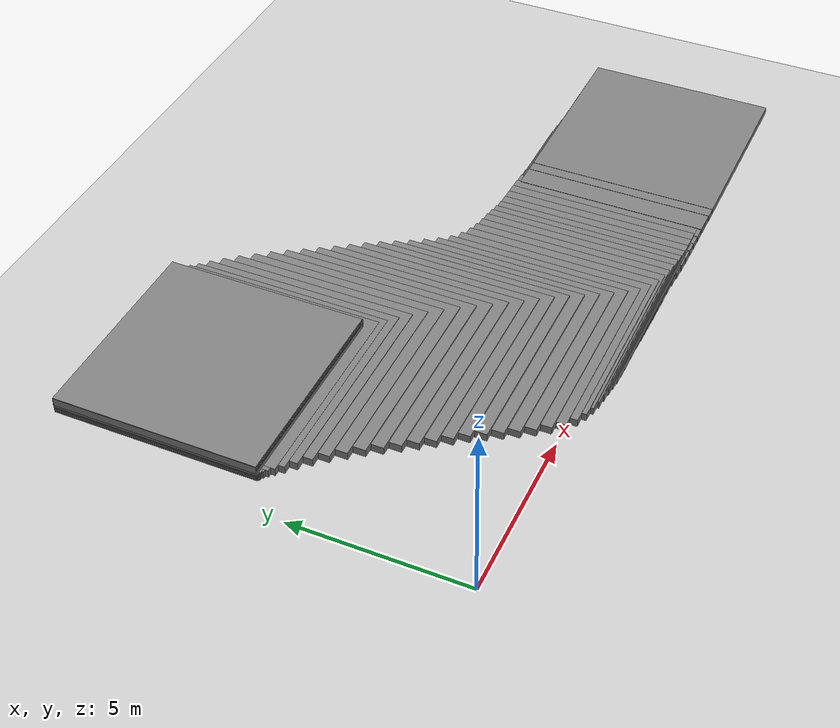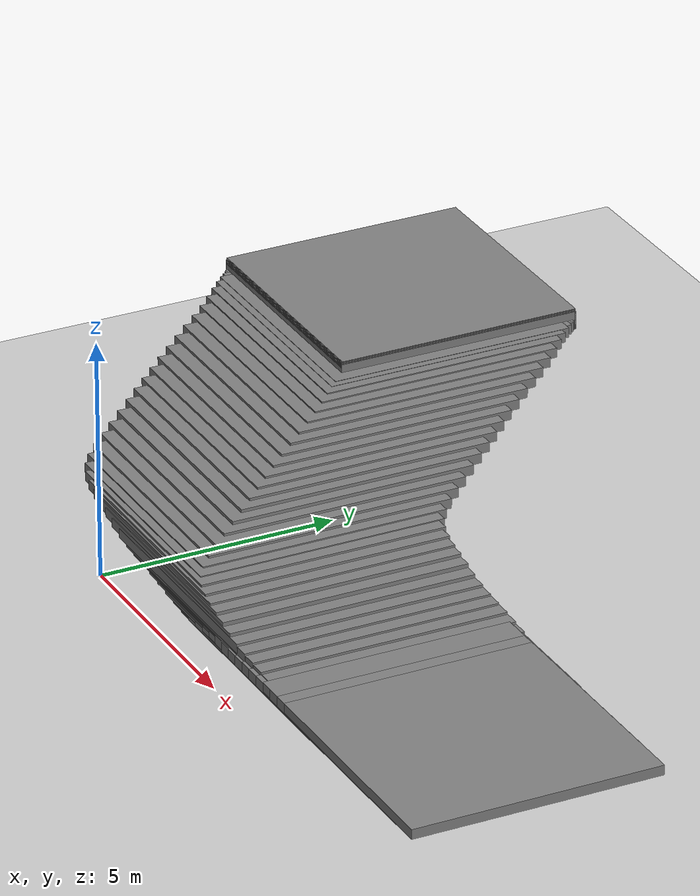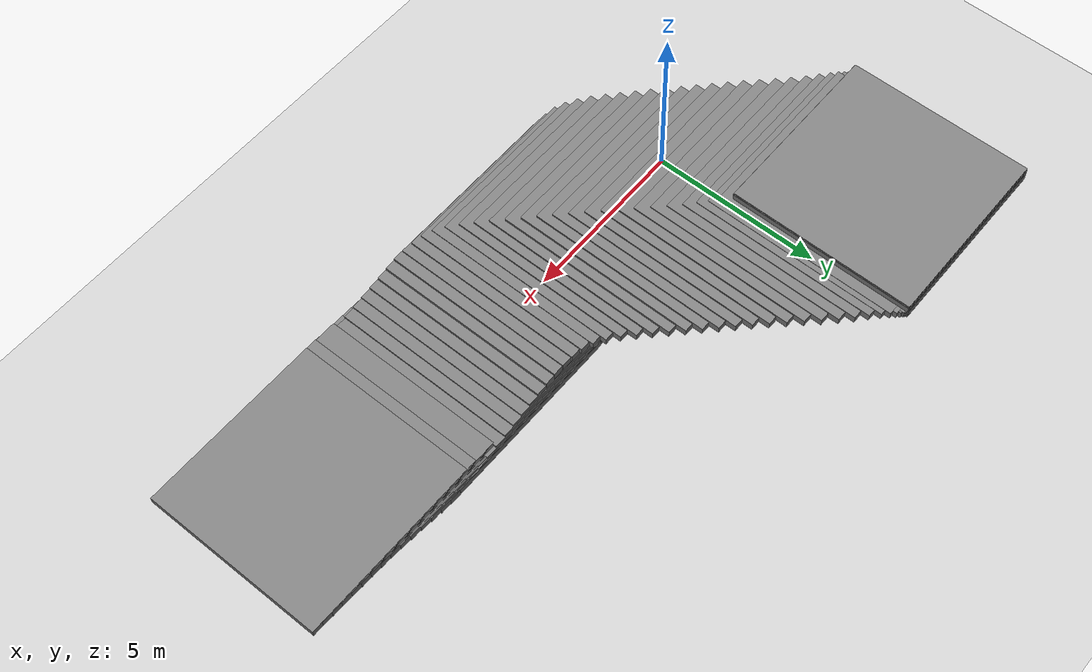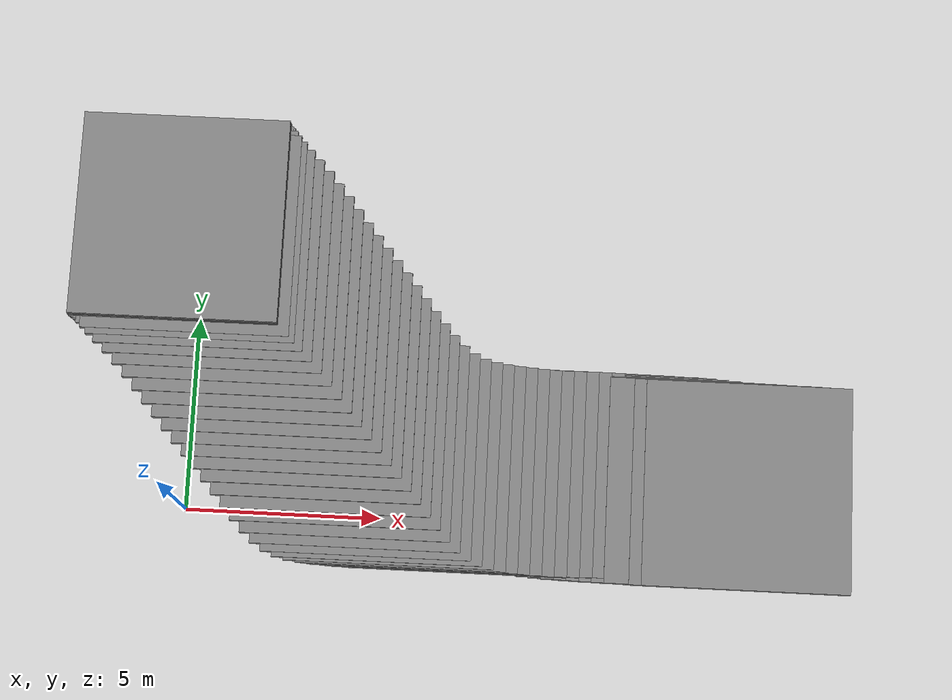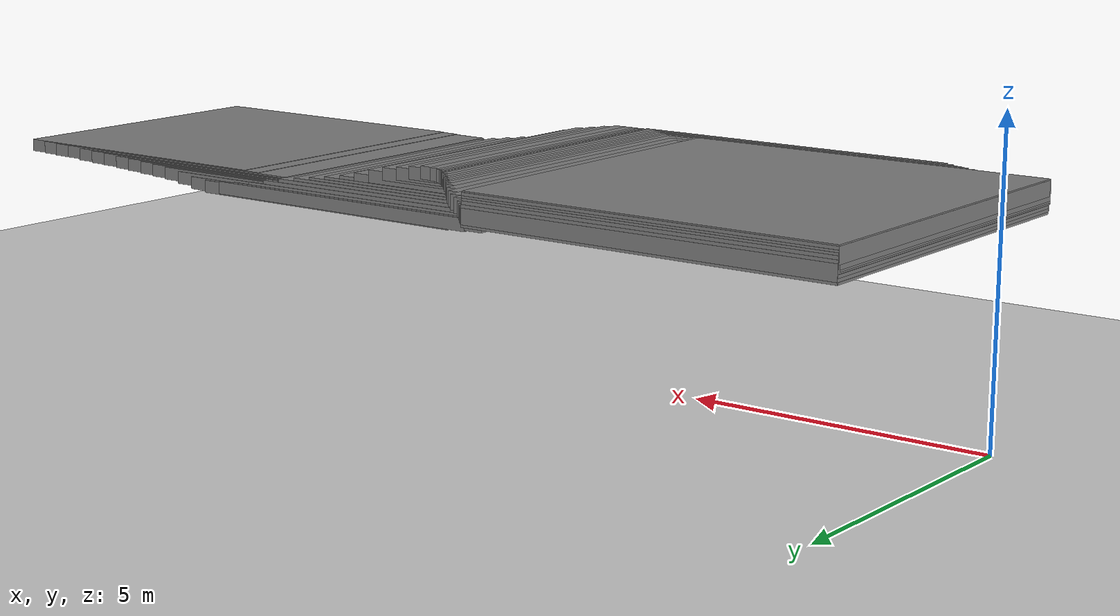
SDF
<sdf version="1.6">
 <world name="default">
  <include><uri>model://sun</uri></include>
  <include><uri>model://ground_plane</uri></include>
  <model name="road_segment_727">
   <static>true</static>
   <link name="link">
    <visual name="visual">
     <geometry><box><size>5.0 5.0 0.2</size></box></geometry>
     <material><ambient>0.5 0.5 0.5 1</ambient><diffuse>0.5 0.5 0.5 1</diffuse></material>
     <pose>13.945016313589571 0.8047315518521492 3.258723942937032 0 0 0</pose>
    </visual>
    <collision name="collision">
     <geometry><box><size>5.0 5.0 0.2</size></box></geometry>
     <pose>13.945016313589571 0.8047315518521492 3.258723942937032 0 0 0</pose>
    </collision>
   </link>
  </model>
  <model name="road_segment_728">
   <static>true</static>
   <link name="link">
    <visual name="visual">
     <geometry><box><size>5.0 5.0 0.2</size></box></geometry>
     <material><ambient>0.5 0.5 0.5 1</ambient><diffuse>0.5 0.5 0.5 1</diffuse></material>
     <pose>13.649188915963883 0.8075917300011508 3.250754920771823 0 0 0</pose>
    </visual>
    <collision name="collision">
     <geometry><box><size>5.0 5.0 0.2</size></box></geometry>
     <pose>13.649188915963883 0.8075917300011508 3.250754920771823 0 0 0</pose>
    </collision>
   </link>
  </model>
  <model name="road_segment_729">
   <static>true</static>
   <link name="link">
    <visual name="visual">
     <geometry><box><size>5.0 5.0 0.2</size></box></geometry>
     <material><ambient>0.5 0.5 0.5 1</ambient><diffuse>0.5 0.5 0.5 1</diffuse></material>
     <pose>13.353591287177087 0.8155593691307714 3.2429150722826083 0 0 0</pose>
    </visual>
    <collision name="collision">
     <geometry><box><size>5.0 5.0 0.2</size></box></geometry>
     <pose>13.353591287177087 0.8155593691307714 3.2429150722826083 0 0 0</pose>
    </collision>
   </link>
  </model>
  <model name="road_segment_730">
   <static>true</static>
   <link name="link">
    <visual name="visual">
     <geometry><box><size>5.0 5.0 0.2</size></box></geometry>
     <material><ambient>0.5 0.5 0.5 1</ambient><diffuse>0.5 0.5 0.5 1</diffuse></material>
     <pose>13.055925738709645 0.8202582332319247 3.2429746909022983 0 0 0</pose>
    </visual>
    <collision name="collision">
     <geometry><box><size>5.0 5.0 0.2</size></box></geometry>
     <pose>13.055925738709645 0.8202582332319247 3.2429746909022983 0 0 0</pose>
    </collision>
   </link>
  </model>
  <model name="road_segment_731">
   <static>true</static>
   <link name="link">
    <visual name="visual">
     <geometry><box><size>5.0 5.0 0.2</size></box></geometry>
     <material><ambient>0.5 0.5 0.5 1</ambient><diffuse>0.5 0.5 0.5 1</diffuse></material>
     <pose>12.757915536983862 0.8235270082567627 3.2236185123763286 0 0 0</pose>
    </visual>
    <collision name="collision">
     <geometry><box><size>5.0 5.0 0.2</size></box></geometry>
     <pose>12.757915536983862 0.8235270082567627 3.2236185123763286 0 0 0</pose>
    </collision>
   </link>
  </model>
  <model name="road_segment_732">
   <static>true</static>
   <link name="link">
    <visual name="visual">
     <geometry><box><size>5.0 5.0 0.2</size></box></geometry>
     <material><ambient>0.5 0.5 0.5 1</ambient><diffuse>0.5 0.5 0.5 1</diffuse></material>
     <pose>12.458182068852095 0.8306774536274518 3.212022690846654 0 0 0</pose>
    </visual>
    <collision name="collision">
     <geometry><box><size>5.0 5.0 0.2</size></box></geometry>
     <pose>12.458182068852095 0.8306774536274518 3.212022690846654 0 0 0</pose>
    </collision>
   </link>
  </model>
  <model name="road_segment_733">
   <static>true</static>
   <link name="link">
    <visual name="visual">
     <geometry><box><size>5.0 5.0 0.2</size></box></geometry>
     <material><ambient>0.5 0.5 0.5 1</ambient><diffuse>0.5 0.5 0.5 1</diffuse></material>
     <pose>12.156955103169565 0.8372150036807571 3.205872036581985 0 0 0</pose>
    </visual>
    <collision name="collision">
     <geometry><box><size>5.0 5.0 0.2</size></box></geometry>
     <pose>12.156955103169565 0.8372150036807571 3.205872036581985 0 0 0</pose>
    </collision>
   </link>
  </model>
  <model name="road_segment_734">
   <static>true</static>
   <link name="link">
    <visual name="visual">
     <geometry><box><size>5.0 5.0 0.2</size></box></geometry>
     <material><ambient>0.5 0.5 0.5 1</ambient><diffuse>0.5 0.5 0.5 1</diffuse></material>
     <pose>11.855728137503363 0.8431396584166783 3.189457043294048 0 0 0</pose>
    </visual>
    <collision name="collision">
     <geometry><box><size>5.0 5.0 0.2</size></box></geometry>
     <pose>11.855728137503363 0.8431396584166783 3.189457043294048 0 0 0</pose>
    </collision>
   </link>
  </model>
  <model name="road_segment_735">
   <static>true</static>
   <link name="link">
    <visual name="visual">
     <geometry><box><size>5.0 5.0 0.2</size></box></geometry>
     <material><ambient>0.5 0.5 0.5 1</ambient><diffuse>0.5 0.5 0.5 1</diffuse></material>
     <pose>11.55335232757739 0.8529459834984507 3.179570288862149 0 0 0</pose>
    </visual>
    <collision name="collision">
     <geometry><box><size>5.0 5.0 0.2</size></box></geometry>
     <pose>11.55335232757739 0.8529459834984507 3.179570288862149 0 0 0</pose>
    </collision>
   </link>
  </model>
  <model name="road_segment_736">
   <static>true</static>
   <link name="link">
    <visual name="visual">
     <geometry><box><size>5.0 5.0 0.2</size></box></geometry>
     <material><ambient>0.5 0.5 0.5 1</ambient><diffuse>0.5 0.5 0.5 1</diffuse></material>
     <pose>11.24844906026033 0.8696984555093648 3.1668615864315974 0 0 0</pose>
    </visual>
    <collision name="collision">
     <geometry><box><size>5.0 5.0 0.2</size></box></geometry>
     <pose>11.24844906026033 0.8696984555093648 3.1668615864315974 0 0 0</pose>
    </collision>
   </link>
  </model>
  <model name="road_segment_737">
   <static>true</static>
   <link name="link">
    <visual name="visual">
     <geometry><box><size>5.0 5.0 0.2</size></box></geometry>
     <material><ambient>0.5 0.5 0.5 1</ambient><diffuse>0.5 0.5 0.5 1</diffuse></material>
     <pose>10.938720647032639 0.8950314619636544 3.156597247408329 0 0 0</pose>
    </visual>
    <collision name="collision">
     <geometry><box><size>5.0 5.0 0.2</size></box></geometry>
     <pose>10.938720647032639 0.8950314619636544 3.156597247408329 0 0 0</pose>
    </collision>
   </link>
  </model>
  <model name="road_segment_738">
   <static>true</static>
   <link name="link">
    <visual name="visual">
     <geometry><box><size>5.0 5.0 0.2</size></box></geometry>
     <material><ambient>0.5 0.5 0.5 1</ambient><diffuse>0.5 0.5 0.5 1</diffuse></material>
     <pose>10.626924314140627 0.9187300809037102 3.144395303245141 0 0 0</pose>
    </visual>
    <collision name="collision">
     <geometry><box><size>5.0 5.0 0.2</size></box></geometry>
     <pose>10.626924314140627 0.9187300809037102 3.144395303245141 0 0 0</pose>
    </collision>
   </link>
  </model>
  <model name="road_segment_739">
   <static>true</static>
   <link name="link">
    <visual name="visual">
     <geometry><box><size>5.0 5.0 0.2</size></box></geometry>
     <material><ambient>0.5 0.5 0.5 1</ambient><diffuse>0.5 0.5 0.5 1</diffuse></material>
     <pose>10.31489821240972 0.9326223747656228 3.1089122880930686 0 0 0</pose>
    </visual>
    <collision name="collision">
     <geometry><box><size>5.0 5.0 0.2</size></box></geometry>
     <pose>10.31489821240972 0.9326223747656228 3.1089122880930686 0 0 0</pose>
    </collision>
   </link>
  </model>
  <model name="road_segment_740">
   <static>true</static>
   <link name="link">
    <visual name="visual">
     <geometry><box><size>5.0 5.0 0.2</size></box></geometry>
     <material><ambient>0.5 0.5 0.5 1</ambient><diffuse>0.5 0.5 0.5 1</diffuse></material>
     <pose>10.001953035257937 0.9434501920442449 3.0593095965111186 0 0 0</pose>
    </visual>
    <collision name="collision">
     <geometry><box><size>5.0 5.0 0.2</size></box></geometry>
     <pose>10.001953035257937 0.9434501920442449 3.0593095965111186 0 0 0</pose>
    </collision>
   </link>
  </model>
  <model name="road_segment_741">
   <static>true</static>
   <link name="link">
    <visual name="visual">
     <geometry><box><size>5.0 5.0 0.2</size></box></geometry>
     <material><ambient>0.5 0.5 0.5 1</ambient><diffuse>0.5 0.5 0.5 1</diffuse></material>
     <pose>9.68728459170017 0.9528479202465514 3.037032105620346 0 0 0</pose>
    </visual>
    <collision name="collision">
     <geometry><box><size>5.0 5.0 0.2</size></box></geometry>
     <pose>9.68728459170017 0.9528479202465514 3.037032105620346 0 0 0</pose>
    </collision>
   </link>
  </model>
  <model name="road_segment_742">
   <static>true</static>
   <link name="link">
    <visual name="visual">
     <geometry><box><size>5.0 5.0 0.2</size></box></geometry>
     <material><ambient>0.5 0.5 0.5 1</ambient><diffuse>0.5 0.5 0.5 1</diffuse></material>
     <pose>9.369284499798864 0.9559123968334713 3.051698286064048 0 0 0</pose>
    </visual>
    <collision name="collision">
     <geometry><box><size>5.0 5.0 0.2</size></box></geometry>
     <pose>9.369284499798864 0.9559123968334713 3.051698286064048 0 0 0</pose>
    </collision>
   </link>
  </model>
  <model name="road_segment_743">
   <static>true</static>
   <link name="link">
    <visual name="visual">
     <geometry><box><size>5.0 5.0 0.2</size></box></geometry>
     <material><ambient>0.5 0.5 0.5 1</ambient><diffuse>0.5 0.5 0.5 1</diffuse></material>
     <pose>9.049561141507901 0.9532565171260171 3.0723163920401193 0 0 0</pose>
    </visual>
    <collision name="collision">
     <geometry><box><size>5.0 5.0 0.2</size></box></geometry>
     <pose>9.049561141507901 0.9532565171260171 3.0723163920401193 0 0 0</pose>
    </collision>
   </link>
  </model>
  <model name="road_segment_744">
   <static>true</static>
   <link name="link">
    <visual name="visual">
     <geometry><box><size>5.0 5.0 0.2</size></box></geometry>
     <material><ambient>0.5 0.5 0.5 1</ambient><diffuse>0.5 0.5 0.5 1</diffuse></material>
     <pose>8.729952667636386 0.9475361608280142 3.115043069484508 0 0 0</pose>
    </visual>
    <collision name="collision">
     <geometry><box><size>5.0 5.0 0.2</size></box></geometry>
     <pose>8.729952667636386 0.9475361608280142 3.115043069484508 0 0 0</pose>
    </collision>
   </link>
  </model>
  <model name="road_segment_745">
   <static>true</static>
   <link name="link">
    <visual name="visual">
     <geometry><box><size>5.0 5.0 0.2</size></box></geometry>
     <material><ambient>0.5 0.5 0.5 1</ambient><diffuse>0.5 0.5 0.5 1</diffuse></material>
     <pose>8.410459078184317 0.9397728201399411 3.176122345356753 0 0 0</pose>
    </visual>
    <collision name="collision">
     <geometry><box><size>5.0 5.0 0.2</size></box></geometry>
     <pose>8.410459078184317 0.9397728201399411 3.176122345356753 0 0 0</pose>
    </collision>
   </link>
  </model>
  <model name="road_segment_746">
   <static>true</static>
   <link name="link">
    <visual name="visual">
     <geometry><box><size>5.0 5.0 0.2</size></box></geometry>
     <material><ambient>0.5 0.5 0.5 1</ambient><diffuse>0.5 0.5 0.5 1</diffuse></material>
     <pose>8.092458986266685 0.9295578981823321 3.231269568569859 0 0 0</pose>
    </visual>
    <collision name="collision">
     <geometry><box><size>5.0 5.0 0.2</size></box></geometry>
     <pose>8.092458986266685 0.9295578981823321 3.231269568569859 0 0 0</pose>
    </collision>
   </link>
  </model>
  <model name="road_segment_747">
   <static>true</static>
   <link name="link">
    <visual name="visual">
     <geometry><box><size>5.0 5.0 0.2</size></box></geometry>
     <material><ambient>0.5 0.5 0.5 1</ambient><diffuse>0.5 0.5 0.5 1</diffuse></material>
     <pose>7.778250080419356 0.918525782465792 3.2783583416882207 0 0 0</pose>
    </visual>
    <collision name="collision">
     <geometry><box><size>5.0 5.0 0.2</size></box></geometry>
     <pose>7.778250080419356 0.918525782465792 3.2783583416882207 0 0 0</pose>
    </collision>
   </link>
  </model>
  <model name="road_segment_748">
   <static>true</static>
   <link name="link">
    <visual name="visual">
     <geometry><box><size>5.0 5.0 0.2</size></box></geometry>
     <material><ambient>0.5 0.5 0.5 1</ambient><diffuse>0.5 0.5 0.5 1</diffuse></material>
     <pose>7.469440742612544 0.9060635776765655 3.318998367443464 0 0 0</pose>
    </visual>
    <collision name="collision">
     <geometry><box><size>5.0 5.0 0.2</size></box></geometry>
     <pose>7.469440742612544 0.9060635776765655 3.318998367443464 0 0 0</pose>
    </collision>
   </link>
  </model>
  <model name="road_segment_749">
   <static>true</static>
   <link name="link">
    <visual name="visual">
     <geometry><box><size>5.0 5.0 0.2</size></box></geometry>
     <material><ambient>0.5 0.5 0.5 1</ambient><diffuse>0.5 0.5 0.5 1</diffuse></material>
     <pose>7.165801203991027 0.8931927760115024 3.360363753071601 0 0 0</pose>
    </visual>
    <collision name="collision">
     <geometry><box><size>5.0 5.0 0.2</size></box></geometry>
     <pose>7.165801203991027 0.8931927760115024 3.360363753071601 0 0 0</pose>
    </collision>
   </link>
  </model>
  <model name="road_segment_750">
   <static>true</static>
   <link name="link">
    <visual name="visual">
     <geometry><box><size>5.0 5.0 0.2</size></box></geometry>
     <material><ambient>0.5 0.5 0.5 1</ambient><diffuse>0.5 0.5 0.5 1</diffuse></material>
     <pose>6.86491889159949 0.8870638228376628 3.412271697948225 0 0 0</pose>
    </visual>
    <collision name="collision">
     <geometry><box><size>5.0 5.0 0.2</size></box></geometry>
     <pose>6.86491889159949 0.8870638228376628 3.412271697948225 0 0 0</pose>
    </collision>
   </link>
  </model>
  <model name="road_segment_751">
   <static>true</static>
   <link name="link">
    <visual name="visual">
     <geometry><box><size>5.0 5.0 0.2</size></box></geometry>
     <material><ambient>0.5 0.5 0.5 1</ambient><diffuse>0.5 0.5 0.5 1</diffuse></material>
     <pose>6.568057534133478 0.8882896134724307 3.483814041576038 0 0 0</pose>
    </visual>
    <collision name="collision">
     <geometry><box><size>5.0 5.0 0.2</size></box></geometry>
     <pose>6.568057534133478 0.8882896134724307 3.483814041576038 0 0 0</pose>
    </collision>
   </link>
  </model>
  <model name="road_segment_752">
   <static>true</static>
   <link name="link">
    <visual name="visual">
     <geometry><box><size>5.0 5.0 0.2</size></box></geometry>
     <material><ambient>0.5 0.5 0.5 1</ambient><diffuse>0.5 0.5 0.5 1</diffuse></material>
     <pose>6.276136206997542 0.8925798806941185 3.565948626635413 0 0 0</pose>
    </visual>
    <collision name="collision">
     <geometry><box><size>5.0 5.0 0.2</size></box></geometry>
     <pose>6.276136206997542 0.8925798806941185 3.565948626635413 0 0 0</pose>
    </collision>
   </link>
  </model>
  <model name="road_segment_753">
   <static>true</static>
   <link name="link">
    <visual name="visual">
     <geometry><box><size>5.0 5.0 0.2</size></box></geometry>
     <material><ambient>0.5 0.5 0.5 1</ambient><diffuse>0.5 0.5 0.5 1</diffuse></material>
     <pose>5.988465603626022 0.9009561166995755 3.6323240232234397 0 0 0</pose>
    </visual>
    <collision name="collision">
     <geometry><box><size>5.0 5.0 0.2</size></box></geometry>
     <pose>5.988465603626022 0.9009561166995755 3.6323240232234397 0 0 0</pose>
    </collision>
   </link>
  </model>
  <model name="road_segment_754">
   <static>true</static>
   <link name="link">
    <visual name="visual">
     <geometry><box><size>5.0 5.0 0.2</size></box></geometry>
     <material><ambient>0.5 0.5 0.5 1</ambient><diffuse>0.5 0.5 0.5 1</diffuse></material>
     <pose>5.70389687975915 0.9189343793452576 3.6717915494581166 0 0 0</pose>
    </visual>
    <collision name="collision">
     <geometry><box><size>5.0 5.0 0.2</size></box></geometry>
     <pose>5.70389687975915 0.9189343793452576 3.6717915494581166 0 0 0</pose>
    </collision>
   </link>
  </model>
  <model name="road_segment_755">
   <static>true</static>
   <link name="link">
    <visual name="visual">
     <geometry><box><size>5.0 5.0 0.2</size></box></geometry>
     <material><ambient>0.5 0.5 0.5 1</ambient><diffuse>0.5 0.5 0.5 1</diffuse></material>
     <pose>5.421281191137155 0.9528479202429224 3.7184928015484946 0 0 0</pose>
    </visual>
    <collision name="collision">
     <geometry><box><size>5.0 5.0 0.2</size></box></geometry>
     <pose>5.421281191137155 0.9528479202429224 3.7184928015484946 0 0 0</pose>
    </collision>
   </link>
  </model>
  <model name="road_segment_756">
   <static>true</static>
   <link name="link">
    <visual name="visual">
     <geometry><box><size>5.0 5.0 0.2</size></box></geometry>
     <material><ambient>0.5 0.5 0.5 1</ambient><diffuse>0.5 0.5 0.5 1</diffuse></material>
     <pose>5.143375763990014 1.0143417504301233 3.759927742232936 0 0 0</pose>
    </visual>
    <collision name="collision">
     <geometry><box><size>5.0 5.0 0.2</size></box></geometry>
     <pose>5.143375763990014 1.0143417504301233 3.759927742232936 0 0 0</pose>
    </collision>
   </link>
  </model>
  <model name="road_segment_757">
   <static>true</static>
   <link name="link">
    <visual name="visual">
     <geometry><box><size>5.0 5.0 0.2</size></box></geometry>
     <material><ambient>0.5 0.5 0.5 1</ambient><diffuse>0.5 0.5 0.5 1</diffuse></material>
     <pose>4.871099673738608 1.1273187872884636 3.7805359117723922 0 0 0</pose>
    </visual>
    <collision name="collision">
     <geometry><box><size>5.0 5.0 0.2</size></box></geometry>
     <pose>4.871099673738608 1.1273187872884636 3.7805359117723922 0 0 0</pose>
    </collision>
   </link>
  </model>
  <model name="road_segment_758">
   <static>true</static>
   <link name="link">
    <visual name="visual">
     <geometry><box><size>5.0 5.0 0.2</size></box></geometry>
     <material><ambient>0.5 0.5 0.5 1</ambient><diffuse>0.5 0.5 0.5 1</diffuse></material>
     <pose>4.608588759727907 1.305262727796761 3.8074636549989718 0 0 0</pose>
    </visual>
    <collision name="collision">
     <geometry><box><size>5.0 5.0 0.2</size></box></geometry>
     <pose>4.608588759727907 1.305262727796761 3.8074636549989718 0 0 0</pose>
    </collision>
   </link>
  </model>
  <model name="road_segment_759">
   <static>true</static>
   <link name="link">
    <visual name="visual">
     <geometry><box><size>5.0 5.0 0.2</size></box></geometry>
     <material><ambient>0.5 0.5 0.5 1</ambient><diffuse>0.5 0.5 0.5 1</diffuse></material>
     <pose>4.357681172750689 1.5395930375116404 3.852118001146665 0 0 0</pose>
    </visual>
    <collision name="collision">
     <geometry><box><size>5.0 5.0 0.2</size></box></geometry>
     <pose>4.357681172750689 1.5395930375116404 3.852118001146665 0 0 0</pose>
    </collision>
   </link>
  </model>
  <model name="road_segment_760">
   <static>true</static>
   <link name="link">
    <visual name="visual">
     <geometry><box><size>5.0 5.0 0.2</size></box></geometry>
     <material><ambient>0.5 0.5 0.5 1</ambient><diffuse>0.5 0.5 0.5 1</diffuse></material>
     <pose>4.114011304639414 1.807836888127814 3.901084760785257 0 0 0</pose>
    </visual>
    <collision name="collision">
     <geometry><box><size>5.0 5.0 0.2</size></box></geometry>
     <pose>4.114011304639414 1.807836888127814 3.901084760785257 0 0 0</pose>
    </collision>
   </link>
  </model>
  <model name="road_segment_761">
   <static>true</static>
   <link name="link">
    <visual name="visual">
     <geometry><box><size>5.0 5.0 0.2</size></box></geometry>
     <material><ambient>0.5 0.5 0.5 1</ambient><diffuse>0.5 0.5 0.5 1</diffuse></material>
     <pose>3.87149028078791 2.090381629485366 3.953340480943405 0 0 0</pose>
    </visual>
    <collision name="collision">
     <geometry><box><size>5.0 5.0 0.2</size></box></geometry>
     <pose>3.87149028078791 2.090381629485366 3.953340480943405 0 0 0</pose>
    </collision>
   </link>
  </model>
  <model name="road_segment_762">
   <static>true</static>
   <link name="link">
    <visual name="visual">
     <geometry><box><size>5.0 5.0 0.2</size></box></geometry>
     <material><ambient>0.5 0.5 0.5 1</ambient><diffuse>0.5 0.5 0.5 1</diffuse></material>
     <pose>3.6281650659513014 2.3825283974867717 4.0176292258422865 0 0 0</pose>
    </visual>
    <collision name="collision">
     <geometry><box><size>5.0 5.0 0.2</size></box></geometry>
     <pose>3.6281650659513014 2.3825283974867717 4.0176292258422865 0 0 0</pose>
    </collision>
   </link>
  </model>
  <model name="road_segment_763">
   <static>true</static>
   <link name="link">
    <visual name="visual">
     <geometry><box><size>5.0 5.0 0.2</size></box></geometry>
     <material><ambient>0.5 0.5 0.5 1</ambient><diffuse>0.5 0.5 0.5 1</diffuse></material>
     <pose>3.38575892653557 2.677126746757713 4.0809143906430565 0 0 0</pose>
    </visual>
    <collision name="collision">
     <geometry><box><size>5.0 5.0 0.2</size></box></geometry>
     <pose>3.38575892653557 2.677126746757713 4.0809143906430565 0 0 0</pose>
    </collision>
   </link>
  </model>
  <model name="road_segment_764">
   <static>true</static>
   <link name="link">
    <visual name="visual">
     <geometry><box><size>5.0 5.0 0.2</size></box></geometry>
     <material><ambient>0.5 0.5 0.5 1</ambient><diffuse>0.5 0.5 0.5 1</diffuse></material>
     <pose>3.141055098583971 2.966413336606488 4.134004771476862 0 0 0</pose>
    </visual>
    <collision name="collision">
     <geometry><box><size>5.0 5.0 0.2</size></box></geometry>
     <pose>3.141055098583971 2.966413336606488 4.134004771476862 0 0 0</pose>
    </collision>
   </link>
  </model>
  <model name="road_segment_765">
   <static>true</static>
   <link name="link">
    <visual name="visual">
     <geometry><box><size>5.0 5.0 0.2</size></box></geometry>
     <material><ambient>0.5 0.5 0.5 1</ambient><diffuse>0.5 0.5 0.5 1</diffuse></material>
     <pose>2.891641009157515 3.253452643623646 4.174465941373036 0 0 0</pose>
    </visual>
    <collision name="collision">
     <geometry><box><size>5.0 5.0 0.2</size></box></geometry>
     <pose>2.891641009157515 3.253452643623646 4.174465941373036 0 0 0</pose>
    </collision>
   </link>
  </model>
  <model name="road_segment_766">
   <static>true</static>
   <link name="link">
    <visual name="visual">
     <geometry><box><size>5.0 5.0 0.2</size></box></geometry>
     <material><ambient>0.5 0.5 0.5 1</ambient><diffuse>0.5 0.5 0.5 1</diffuse></material>
     <pose>2.6400441156309644 3.539470458447583 4.215722026198408 0 0 0</pose>
    </visual>
    <collision name="collision">
     <geometry><box><size>5.0 5.0 0.2</size></box></geometry>
     <pose>2.6400441156309644 3.539470458447583 4.215722026198408 0 0 0</pose>
    </collision>
   </link>
  </model>
  <model name="road_segment_767">
   <static>true</static>
   <link name="link">
    <visual name="visual">
     <geometry><box><size>5.0 5.0 0.2</size></box></geometry>
     <material><ambient>0.5 0.5 0.5 1</ambient><diffuse>0.5 0.5 0.5 1</diffuse></material>
     <pose>2.3883323376849668 3.8289613467379056 4.261449507500519 0 0 0</pose>
    </visual>
    <collision name="collision">
     <geometry><box><size>5.0 5.0 0.2</size></box></geometry>
     <pose>2.3883323376849668 3.8289613467379056 4.261449507500519 0 0 0</pose>
    </collision>
   </link>
  </model>
  <model name="road_segment_768">
   <static>true</static>
   <link name="link">
    <visual name="visual">
     <geometry><box><size>5.0 5.0 0.2</size></box></geometry>
     <material><ambient>0.5 0.5 0.5 1</ambient><diffuse>0.5 0.5 0.5 1</diffuse></material>
     <pose>2.137309866288301 4.12744136635107 4.306074044338367 0 0 0</pose>
    </visual>
    <collision name="collision">
     <geometry><box><size>5.0 5.0 0.2</size></box></geometry>
     <pose>2.137309866288301 4.12744136635107 4.306074044338367 0 0 0</pose>
    </collision>
   </link>
  </model>
  <model name="road_segment_769">
   <static>true</static>
   <link name="link">
    <visual name="visual">
     <geometry><box><size>5.0 5.0 0.2</size></box></geometry>
     <material><ambient>0.5 0.5 0.5 1</ambient><diffuse>0.5 0.5 0.5 1</diffuse></material>
     <pose>1.8860576260364166 4.4310288469412225 4.354394935596986 0 0 0</pose>
    </visual>
    <collision name="collision">
     <geometry><box><size>5.0 5.0 0.2</size></box></geometry>
     <pose>1.8860576260364166 4.4310288469412225 4.354394935596986 0 0 0</pose>
    </collision>
   </link>
  </model>
  <model name="road_segment_770">
   <static>true</static>
   <link name="link">
    <visual name="visual">
     <geometry><box><size>5.0 5.0 0.2</size></box></geometry>
     <material><ambient>0.5 0.5 0.5 1</ambient><diffuse>0.5 0.5 0.5 1</diffuse></material>
     <pose>1.6335416571053143 4.734412029093458 4.396694346266931 0 0 0</pose>
    </visual>
    <collision name="collision">
     <geometry><box><size>5.0 5.0 0.2</size></box></geometry>
     <pose>1.6335416571053143 4.734412029093458 4.396694346266931 0 0 0</pose>
    </collision>
   </link>
  </model>
  <model name="road_segment_771">
   <static>true</static>
   <link name="link">
    <visual name="visual">
     <geometry><box><size>5.0 5.0 0.2</size></box></geometry>
     <material><ambient>0.5 0.5 0.5 1</ambient><diffuse>0.5 0.5 0.5 1</diffuse></material>
     <pose>1.3790726529293362 5.035547928417705 4.426632829787847 0 0 0</pose>
    </visual>
    <collision name="collision">
     <geometry><box><size>5.0 5.0 0.2</size></box></geometry>
     <pose>1.3790726529293362 5.035547928417705 4.426632829787847 0 0 0</pose>
    </collision>
   </link>
  </model>
  <model name="road_segment_772">
   <static>true</static>
   <link name="link">
    <visual name="visual">
     <geometry><box><size>5.0 5.0 0.2</size></box></geometry>
     <material><ambient>0.5 0.5 0.5 1</ambient><diffuse>0.5 0.5 0.5 1</diffuse></material>
     <pose>1.1220761913622708 5.328920487050249 4.454892055520833 0 0 0</pose>
    </visual>
    <collision name="collision">
     <geometry><box><size>5.0 5.0 0.2</size></box></geometry>
     <pose>1.1220761913622708 5.328920487050249 4.454892055520833 0 0 0</pose>
    </collision>
   </link>
  </model>
  <model name="road_segment_773">
   <static>true</static>
   <link name="link">
    <visual name="visual">
     <geometry><box><size>5.0 5.0 0.2</size></box></geometry>
     <material><ambient>0.5 0.5 0.5 1</ambient><diffuse>0.5 0.5 0.5 1</diffuse></material>
     <pose>0.8684113781550713 5.596960039228504 4.481203739677285 0 0 0</pose>
    </visual>
    <collision name="collision">
     <geometry><box><size>5.0 5.0 0.2</size></box></geometry>
     <pose>0.8684113781550713 5.596960039228504 4.481203739677285 0 0 0</pose>
    </collision>
   </link>
  </model>
  <model name="road_segment_774">
   <static>true</static>
   <link name="link">
    <visual name="visual">
     <geometry><box><size>5.0 5.0 0.2</size></box></geometry>
     <material><ambient>0.5 0.5 0.5 1</ambient><diffuse>0.5 0.5 0.5 1</diffuse></material>
     <pose>0.6279582739842158 5.827204380163243 4.5028254257514675 0 0 0</pose>
    </visual>
    <collision name="collision">
     <geometry><box><size>5.0 5.0 0.2</size></box></geometry>
     <pose>0.6279582739842158 5.827204380163243 4.5028254257514675 0 0 0</pose>
    </collision>
   </link>
  </model>
  <model name="road_segment_775">
   <static>true</static>
   <link name="link">
    <visual name="visual">
     <geometry><box><size>5.0 5.0 0.2</size></box></geometry>
     <material><ambient>0.5 0.5 0.5 1</ambient><diffuse>0.5 0.5 0.5 1</diffuse></material>
     <pose>0.4255319149032043 6.022105091120373 4.509860422874869 0 0 0</pose>
    </visual>
    <collision name="collision">
     <geometry><box><size>5.0 5.0 0.2</size></box></geometry>
     <pose>0.4255319149032043 6.022105091120373 4.509860422874869 0 0 0</pose>
    </collision>
   </link>
  </model>
  <model name="road_segment_776">
   <static>true</static>
   <link name="link">
    <visual name="visual">
     <geometry><box><size>5.0 5.0 0.2</size></box></geometry>
     <material><ambient>0.5 0.5 0.5 1</ambient><diffuse>0.5 0.5 0.5 1</diffuse></material>
     <pose>0.28284545747721573 6.172468742342764 4.5177102078006985 0 0 0</pose>
    </visual>
    <collision name="collision">
     <geometry><box><size>5.0 5.0 0.2</size></box></geometry>
     <pose>0.28284545747721573 6.172468742342764 4.5177102078006985 0 0 0</pose>
    </collision>
   </link>
  </model>
  <model name="road_segment_777">
   <static>true</static>
   <link name="link">
    <visual name="visual">
     <geometry><box><size>5.0 5.0 0.2</size></box></geometry>
     <material><ambient>0.5 0.5 0.5 1</ambient><diffuse>0.5 0.5 0.5 1</diffuse></material>
     <pose>0.18622765499211974 6.280134019778938 4.51749160619517 0 0 0</pose>
    </visual>
    <collision name="collision">
     <geometry><box><size>5.0 5.0 0.2</size></box></geometry>
     <pose>0.18622765499211974 6.280134019778938 4.51749160619517 0 0 0</pose>
    </collision>
   </link>
  </model>
  <model name="road_segment_778">
   <static>true</static>
   <link name="link">
    <visual name="visual">
     <geometry><box><size>5.0 5.0 0.2</size></box></geometry>
     <material><ambient>0.5 0.5 0.5 1</ambient><diffuse>0.5 0.5 0.5 1</diffuse></material>
     <pose>0.11752676808149645 6.354907248510667 4.51553412818202 0 0 0</pose>
    </visual>
    <collision name="collision">
     <geometry><box><size>5.0 5.0 0.2</size></box></geometry>
     <pose>0.11752676808149645 6.354907248510667 4.51553412818202 0 0 0</pose>
    </collision>
   </link>
  </model>
  <model name="road_segment_779">
   <static>true</static>
   <link name="link">
    <visual name="visual">
     <geometry><box><size>5.0 5.0 0.2</size></box></geometry>
     <material><ambient>0.5 0.5 0.5 1</ambient><diffuse>0.5 0.5 0.5 1</diffuse></material>
     <pose>0.07157299757637667 6.395154041027348 4.516130314378918 0 0 0</pose>
    </visual>
    <collision name="collision">
     <geometry><box><size>5.0 5.0 0.2</size></box></geometry>
     <pose>0.07157299757637667 6.395154041027348 4.516130314378918 0 0 0</pose>
    </collision>
   </link>
  </model>
  <model name="road_segment_780">
   <static>true</static>
   <link name="link">
    <visual name="visual">
     <geometry><box><size>5.0 5.0 0.2</size></box></geometry>
     <material><ambient>0.5 0.5 0.5 1</ambient><diffuse>0.5 0.5 0.5 1</diffuse></material>
     <pose>0.038945820527047495 6.416809675577334 4.500629473259559 0 0 0</pose>
    </visual>
    <collision name="collision">
     <geometry><box><size>5.0 5.0 0.2</size></box></geometry>
     <pose>0.038945820527047495 6.416809675577334 4.500629473259559 0 0 0</pose>
    </collision>
   </link>
  </model>
  <model name="road_segment_781">
   <static>true</static>
   <link name="link">
    <visual name="visual">
     <geometry><box><size>5.0 5.0 0.2</size></box></geometry>
     <material><ambient>0.5 0.5 0.5 1</ambient><diffuse>0.5 0.5 0.5 1</diffuse></material>
     <pose>0.015049859861773046 6.439691100762088 4.505160488355987 0 0 0</pose>
    </visual>
    <collision name="collision">
     <geometry><box><size>5.0 5.0 0.2</size></box></geometry>
     <pose>0.015049859861773046 6.439691100762088 4.505160488355987 0 0 0</pose>
    </collision>
   </link>
  </model>
  <model name="road_segment_782">
   <static>true</static>
   <link name="link">
    <visual name="visual">
     <geometry><box><size>5.0 5.0 0.2</size></box></geometry>
     <material><ambient>0.5 0.5 0.5 1</ambient><diffuse>0.5 0.5 0.5 1</diffuse></material>
     <pose>0.006088874606172856 6.46155103375362 4.507465741650661 0 0 0</pose>
    </visual>
    <collision name="collision">
     <geometry><box><size>5.0 5.0 0.2</size></box></geometry>
     <pose>0.006088874606172856 6.46155103375362 4.507465741650661 0 0 0</pose>
    </collision>
   </link>
  </model>
  <model name="road_segment_783">
   <static>true</static>
   <link name="link">
    <visual name="visual">
     <geometry><box><size>5.0 5.0 0.2</size></box></geometry>
     <material><ambient>0.5 0.5 0.5 1</ambient><diffuse>0.5 0.5 0.5 1</diffuse></material>
     <pose>0.006088874606172856 6.471153060393846 4.507972499918024 0 0 0</pose>
    </visual>
    <collision name="collision">
     <geometry><box><size>5.0 5.0 0.2</size></box></geometry>
     <pose>0.006088874606172856 6.471153060393846 4.507972499918024 0 0 0</pose>
    </collision>
   </link>
  </model>
  <model name="road_segment_784">
   <static>true</static>
   <link name="link">
    <visual name="visual">
     <geometry><box><size>5.0 5.0 0.2</size></box></geometry>
     <material><ambient>0.5 0.5 0.5 1</ambient><diffuse>0.5 0.5 0.5 1</diffuse></material>
     <pose>0.005744221331506788 6.472583149466532 4.539868461452091 0 0 0</pose>
    </visual>
    <collision name="collision">
     <geometry><box><size>5.0 5.0 0.2</size></box></geometry>
     <pose>0.005744221331506788 6.472583149466532 4.539868461452091 0 0 0</pose>
    </collision>
   </link>
  </model>
  <model name="road_segment_785">
   <static>true</static>
   <link name="link">
    <visual name="visual">
     <geometry><box><size>5.0 5.0 0.2</size></box></geometry>
     <material><ambient>0.5 0.5 0.5 1</ambient><diffuse>0.5 0.5 0.5 1</diffuse></material>
     <pose>0.0039060705060776583 6.471561657269682 4.581005309038083 0 0 0</pose>
    </visual>
    <collision name="collision">
     <geometry><box><size>5.0 5.0 0.2</size></box></geometry>
     <pose>0.0039060705060776583 6.471561657269682 4.581005309038083 0 0 0</pose>
    </collision>
   </link>
  </model>
  <model name="road_segment_786">
   <static>true</static>
   <link name="link">
    <visual name="visual">
     <geometry><box><size>5.0 5.0 0.2</size></box></geometry>
     <material><ambient>0.5 0.5 0.5 1</ambient><diffuse>0.5 0.5 0.5 1</diffuse></material>
     <pose>0.001608381970209731 6.469927269755448 4.625351625650712 0 0 0</pose>
    </visual>
    <collision name="collision">
     <geometry><box><size>5.0 5.0 0.2</size></box></geometry>
     <pose>0.001608381970209731 6.469927269755448 4.625351625650712 0 0 0</pose>
    </collision>
   </link>
  </model>
  <model name="road_segment_787">
   <static>true</static>
   <link name="link">
    <visual name="visual">
     <geometry><box><size>5.0 5.0 0.2</size></box></geometry>
     <material><ambient>0.5 0.5 0.5 1</ambient><diffuse>0.5 0.5 0.5 1</diffuse></material>
     <pose>0.0026423418105339953 6.468905777562228 4.656164515593747 0 0 0</pose>
    </visual>
    <collision name="collision">
     <geometry><box><size>5.0 5.0 0.2</size></box></geometry>
     <pose>0.0026423418105339953 6.468905777562228 4.656164515593747 0 0 0</pose>
    </collision>
   </link>
  </model>
  <model name="road_segment_788">
   <static>true</static>
   <link name="link">
    <visual name="visual">
     <geometry><box><size>5.0 5.0 0.2</size></box></geometry>
     <material><ambient>0.5 0.5 0.5 1</ambient><diffuse>0.5 0.5 0.5 1</diffuse></material>
     <pose>0.002067919680648528 6.466249897854774 4.68338041548216 0 0 0</pose>
    </visual>
    <collision name="collision">
     <geometry><box><size>5.0 5.0 0.2</size></box></geometry>
     <pose>0.002067919680648528 6.466249897854774 4.68338041548216 0 0 0</pose>
    </collision>
   </link>
  </model>
  <model name="road_segment_789">
   <static>true</static>
   <link name="link">
    <visual name="visual">
     <geometry><box><size>5.0 5.0 0.2</size></box></geometry>
     <material><ambient>0.5 0.5 0.5 1</ambient><diffuse>0.5 0.5 0.5 1</diffuse></material>
     <pose>0.0003446532909921273 6.463185421267855 4.723762093885416 0 0 0</pose>
    </visual>
    <collision name="collision">
     <geometry><box><size>5.0 5.0 0.2</size></box></geometry>
     <pose>0.0003446532909921273 6.463185421267855 4.723762093885416 0 0 0</pose>
    </collision>
   </link>
  </model>
  <model name="road_segment_790">
   <static>true</static>
   <link name="link">
    <visual name="visual">
     <geometry><box><size>5.0 5.0 0.2</size></box></geometry>
     <material><ambient>0.5 0.5 0.5 1</ambient><diffuse>0.5 0.5 0.5 1</diffuse></material>
     <pose>0.0013786131313163912 6.459916646239387 4.7400975956804325 0 0 0</pose>
    </visual>
    <collision name="collision">
     <geometry><box><size>5.0 5.0 0.2</size></box></geometry>
     <pose>0.0013786131313163912 6.459916646239387 4.7400975956804325 0 0 0</pose>
    </collision>
   </link>
  </model>
  <model name="road_segment_791">
   <static>true</static>
   <link name="link">
    <visual name="visual">
     <geometry><box><size>5.0 5.0 0.2</size></box></geometry>
     <material><ambient>0.5 0.5 0.5 1</ambient><diffuse>0.5 0.5 0.5 1</diffuse></material>
     <pose>0.002182804116421257 6.454809185258768 4.736669525048266 0 0 0</pose>
    </visual>
    <collision name="collision">
     <geometry><box><size>5.0 5.0 0.2</size></box></geometry>
     <pose>0.002182804116421257 6.454809185258768 4.736669525048266 0 0 0</pose>
    </collision>
   </link>
  </model>
  <model name="road_segment_792">
   <static>true</static>
   <link name="link">
    <visual name="visual">
     <geometry><box><size>5.0 5.0 0.2</size></box></geometry>
     <material><ambient>0.5 0.5 0.5 1</ambient><diffuse>0.5 0.5 0.5 1</diffuse></material>
     <pose>0.0028721106820794526 6.451336111796012 4.726991435785282 0 0 0</pose>
    </visual>
    <collision name="collision">
     <geometry><box><size>5.0 5.0 0.2</size></box></geometry>
     <pose>0.0028721106820794526 6.451336111796012 4.726991435785282 0 0 0</pose>
    </collision>
   </link>
  </model>
  <model name="road_segment_793">
   <static>true</static>
   <link name="link">
    <visual name="visual">
     <geometry><box><size>5.0 5.0 0.2</size></box></geometry>
     <material><ambient>0.5 0.5 0.5 1</ambient><diffuse>0.5 0.5 0.5 1</diffuse></material>
     <pose>0.004135839361297056 6.449088828964395 4.716200465621419 0 0 0</pose>
    </visual>
    <collision name="collision">
     <geometry><box><size>5.0 5.0 0.2</size></box></geometry>
     <pose>0.004135839361297056 6.449088828964395 4.716200465621419 0 0 0</pose>
    </collision>
   </link>
  </model>
  <model name="road_segment_794">
   <static>true</static>
   <link name="link">
    <visual name="visual">
     <geometry><box><size>5.0 5.0 0.2</size></box></geometry>
     <material><ambient>0.5 0.5 0.5 1</ambient><diffuse>0.5 0.5 0.5 1</diffuse></material>
     <pose>0.005744221331506788 6.447045844570695 4.720085612337874 0 0 0</pose>
    </visual>
    <collision name="collision">
     <geometry><box><size>5.0 5.0 0.2</size></box></geometry>
     <pose>0.005744221331506788 6.447045844570695 4.720085612337874 0 0 0</pose>
    </collision>
   </link>
  </model>
  <model name="road_segment_795">
   <static>true</static>
   <link name="link">
    <visual name="visual">
     <geometry><box><size>5.0 5.0 0.2</size></box></geometry>
     <material><ambient>0.5 0.5 0.5 1</ambient><diffuse>0.5 0.5 0.5 1</diffuse></material>
     <pose>0.008731216416706851 6.445207158618544 4.695731406194573 0 0 0</pose>
    </visual>
    <collision name="collision">
     <geometry><box><size>5.0 5.0 0.2</size></box></geometry>
     <pose>0.008731216416706851 6.445207158618544 4.695731406194573 0 0 0</pose>
    </collision>
   </link>
  </model>
  <model name="road_segment_796">
   <static>true</static>
   <link name="link">
    <visual name="visual">
     <geometry><box><size>5.0 5.0 0.2</size></box></geometry>
     <material><ambient>0.5 0.5 0.5 1</ambient><diffuse>0.5 0.5 0.5 1</diffuse></material>
     <pose>0.009650291821258386 6.445411457060091 4.680200755765369 0 0 0</pose>
    </visual>
    <collision name="collision">
     <geometry><box><size>5.0 5.0 0.2</size></box></geometry>
     <pose>0.009650291821258386 6.445411457060091 4.680200755765369 0 0 0</pose>
    </collision>
   </link>
  </model>
  <model name="road_segment_797">
   <static>true</static>
   <link name="link">
    <visual name="visual">
     <geometry><box><size>5.0 5.0 0.2</size></box></geometry>
     <material><ambient>0.5 0.5 0.5 1</ambient><diffuse>0.5 0.5 0.5 1</diffuse></material>
     <pose>0.0072377188659437895 6.447250143012242 4.70273659400813 0 0 0</pose>
    </visual>
    <collision name="collision">
     <geometry><box><size>5.0 5.0 0.2</size></box></geometry>
     <pose>0.0072377188659437895 6.447250143012242 4.70273659400813 0 0 0</pose>
    </collision>
   </link>
  </model>
  <model name="road_segment_798">
   <static>true</static>
   <link name="link">
    <visual name="visual">
     <geometry><box><size>5.0 5.0 0.2</size></box></geometry>
     <material><ambient>0.5 0.5 0.5 1</ambient><diffuse>0.5 0.5 0.5 1</diffuse></material>
     <pose>0.004710261491182524 6.446024352373845 4.701027526910354 0 0 0</pose>
    </visual>
    <collision name="collision">
     <geometry><box><size>5.0 5.0 0.2</size></box></geometry>
     <pose>0.004710261491182524 6.446024352373845 4.701027526910354 0 0 0</pose>
    </collision>
   </link>
  </model>
  <model name="road_segment_799">
   <static>true</static>
   <link name="link">
    <visual name="visual">
     <geometry><box><size>5.0 5.0 0.2</size></box></geometry>
     <material><ambient>0.5 0.5 0.5 1</ambient><diffuse>0.5 0.5 0.5 1</diffuse></material>
     <pose>0.0028721106820794526 6.443164174224844 4.680230565075214 0 0 0</pose>
    </visual>
    <collision name="collision">
     <geometry><box><size>5.0 5.0 0.2</size></box></geometry>
     <pose>0.0028721106820794526 6.443164174224844 4.680230565075214 0 0 0</pose>
    </collision>
   </link>
  </model>
  <model name="road_segment_800">
   <static>true</static>
   <link name="link">
    <visual name="visual">
     <geometry><box><size>5.0 5.0 0.2</size></box></geometry>
     <material><ambient>0.5 0.5 0.5 1</ambient><diffuse>0.5 0.5 0.5 1</diffuse></material>
     <pose>0.0018381508417551888 6.440916891396856 4.667710654940347 0 0 0</pose>
    </visual>
    <collision name="collision">
     <geometry><box><size>5.0 5.0 0.2</size></box></geometry>
     <pose>0.0018381508417551888 6.440916891396856 4.667710654940347 0 0 0</pose>
    </collision>
   </link>
  </model>
  <model name="road_segment_801">
   <static>true</static>
   <link name="link">
    <visual name="visual">
     <geometry><box><size>5.0 5.0 0.2</size></box></geometry>
     <material><ambient>0.5 0.5 0.5 1</ambient><diffuse>0.5 0.5 0.5 1</diffuse></material>
     <pose>0.001033959856650323 6.439486802324169 4.670661776614994 0 0 0</pose>
    </visual>
    <collision name="collision">
     <geometry><box><size>5.0 5.0 0.2</size></box></geometry>
     <pose>0.001033959856650323 6.439486802324169 4.670661776614994 0 0 0</pose>
    </collision>
   </link>
  </model>
  <model name="road_segment_802">
   <static>true</static>
   <link name="link">
    <visual name="visual">
     <geometry><box><size>5.0 5.0 0.2</size></box></geometry>
     <material><ambient>0.5 0.5 0.5 1</ambient><diffuse>0.5 0.5 0.5 1</diffuse></material>
     <pose>0.0008041910014309245 6.43846531012732 4.666866057828074 0 0 0</pose>
    </visual>
    <collision name="collision">
     <geometry><box><size>5.0 5.0 0.2</size></box></geometry>
     <pose>0.0008041910014309245 6.43846531012732 4.666866057828074 0 0 0</pose>
    </collision>
   </link>
  </model>
  <model name="road_segment_803">
   <static>true</static>
   <link name="link">
    <visual name="visual">
     <geometry><box><size>5.0 5.0 0.2</size></box></geometry>
     <material><ambient>0.5 0.5 0.5 1</ambient><diffuse>0.5 0.5 0.5 1</diffuse></material>
     <pose>0.0013786131313163917 6.437852414809936 4.643853270627794 0 0 0</pose>
    </visual>
    <collision name="collision">
     <geometry><box><size>5.0 5.0 0.2</size></box></geometry>
     <pose>0.0013786131313163917 6.437852414809936 4.643853270627794 0 0 0</pose>
    </collision>
   </link>
  </model>
  <model name="road_segment_804">
   <static>true</static>
   <link name="link">
    <visual name="visual">
     <geometry><box><size>5.0 5.0 0.2</size></box></geometry>
     <material><ambient>0.5 0.5 0.5 1</ambient><diffuse>0.5 0.5 0.5 1</diffuse></material>
     <pose>0.002182804116421257 6.437852414809936 4.62452690141167 0 0 0</pose>
    </visual>
    <collision name="collision">
     <geometry><box><size>5.0 5.0 0.2</size></box></geometry>
     <pose>0.002182804116421257 6.437852414809936 4.62452690141167 0 0 0</pose>
    </collision>
   </link>
  </model>
  <model name="road_segment_805">
   <static>true</static>
   <link name="link">
    <visual name="visual">
     <geometry><box><size>5.0 5.0 0.2</size></box></geometry>
     <material><ambient>0.5 0.5 0.5 1</ambient><diffuse>0.5 0.5 0.5 1</diffuse></material>
     <pose>0.002757226246306724 6.437852414809936 4.620333725160151 0 0 0</pose>
    </visual>
    <collision name="collision">
     <geometry><box><size>5.0 5.0 0.2</size></box></geometry>
     <pose>0.002757226246306724 6.437852414809936 4.620333725160151 0 0 0</pose>
    </collision>
   </link>
  </model>
  <model name="road_segment_806">
   <static>true</static>
   <link name="link">
    <visual name="visual">
     <geometry><box><size>5.0 5.0 0.2</size></box></geometry>
     <material><ambient>0.5 0.5 0.5 1</ambient><diffuse>0.5 0.5 0.5 1</diffuse></material>
     <pose>0.0029869951015261227 6.438261011689402 4.621446606061028 0 0 0</pose>
    </visual>
    <collision name="collision">
     <geometry><box><size>5.0 5.0 0.2</size></box></geometry>
     <pose>0.0029869951015261227 6.438261011689402 4.621446606061028 0 0 0</pose>
    </collision>
   </link>
  </model>
 </world>
</sdf>
